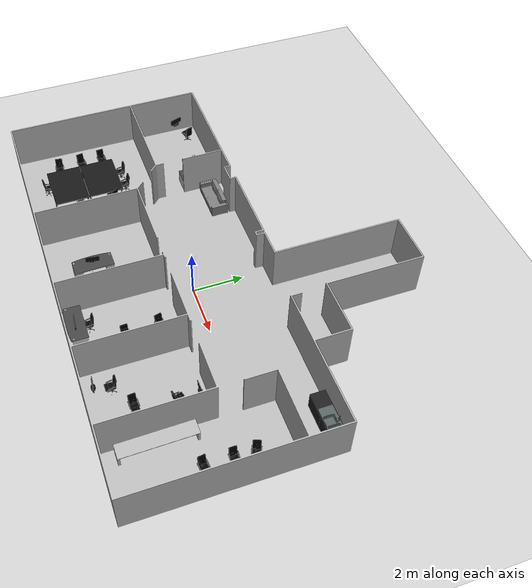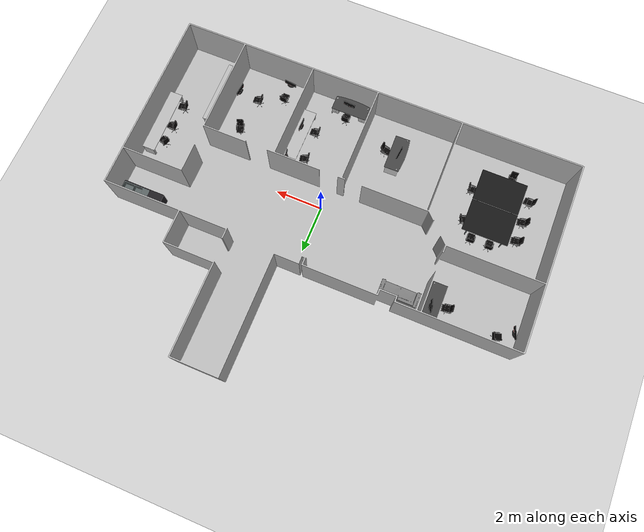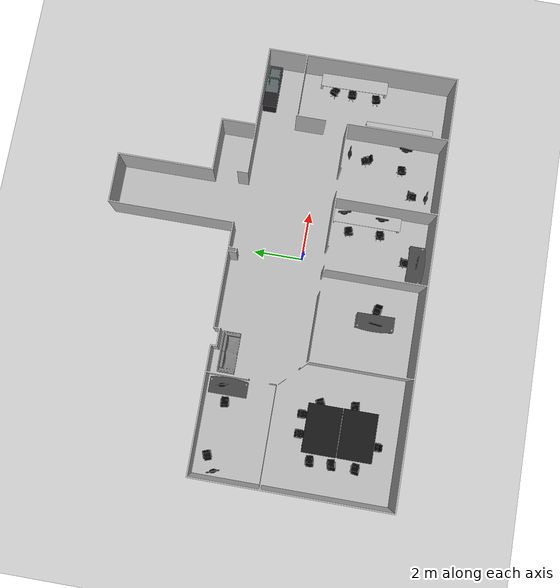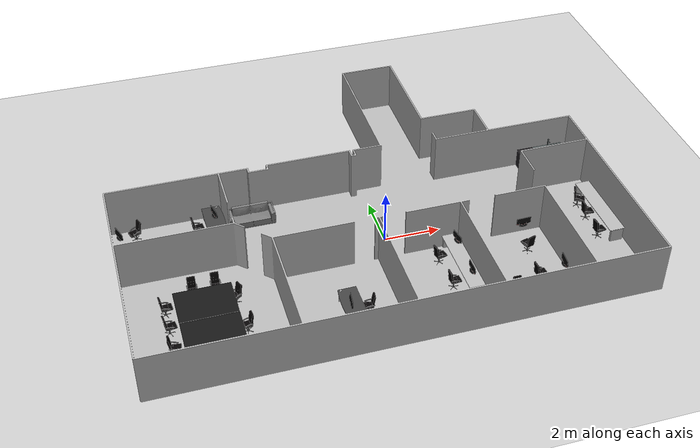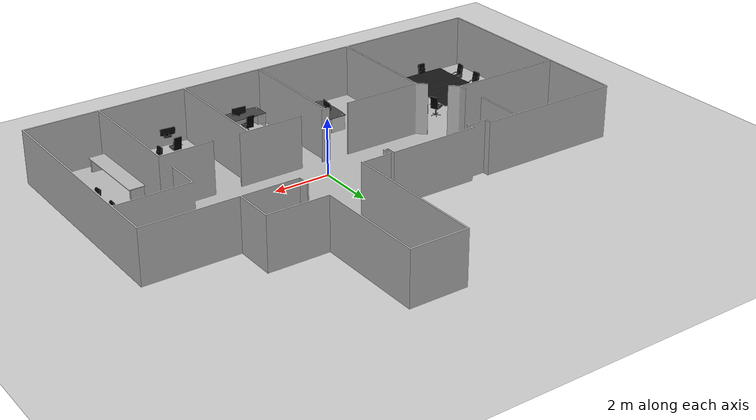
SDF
<sdf version="1.4">
 <world name="default">
  <light name="sun" type="directional">
   <pose>0 0 10 0 -0 0</pose>
   <diffuse>0.8 0.8 0.8 1</diffuse>
   <specular>0.2 0.2 0.2 1</specular>
   <attenuation>
    <range>1000</range>
    <constant>0.9</constant>
    <linear>0.01</linear>
    <quadratic>0.001</quadratic>
   </attenuation>
   <direction>-0.5 0.1 -0.9</direction>
  </light>
  <model name="ground_plane">
   <static>1</static>
   <link name="link">
    <collision name="collision">
     <geometry><plane><normal>0 0 1</normal><size>100 100</size></plane></geometry>
     <surface><friction><ode><mu>100</mu><mu2>50</mu2></ode></friction></surface>
    </collision>
    <visual name="visual">
     <cast_shadows>0</cast_shadows>
     <geometry><plane><normal>0 0 1</normal><size>100 100</size></plane></geometry>
     <material>
      <script><uri>file://media/materials/scripts/gazebo.material</uri><name>Gazebo/Grey</name></script>
     </material>
    </visual>
    <velocity_decay><linear>0</linear><angular>0</angular></velocity_decay>
   </link>
  </model>
  <physics type="ode">
   <max_step_size>0.001</max_step_size>
   <real_time_factor>1</real_time_factor>
   <real_time_update_rate>1000</real_time_update_rate>
   <gravity>0 0 -9.8</gravity>
  </physics>
  <scene><ambient>0.4 0.4 0.4 1</ambient><background>0.7 0.7 0.7 1</background><shadows>1</shadows></scene>
  <spherical_coordinates>
   <surface_model>EARTH_WGS84</surface_model>
   <latitude_deg>0</latitude_deg>
   <longitude_deg>0</longitude_deg>
   <elevation>0</elevation>
   <heading_deg>0</heading_deg>
  </spherical_coordinates>
  <model name="cogni_office">
   <static>1</static>
   <pose>-1.0274 -0.806615 0.001 0 -0 0</pose>
   <link name="walls">
    <collision name="collision">
     <geometry><mesh><uri>model://cogni_office/meshes/cogni_office_collision.dae</uri></mesh></geometry>
     <surface><friction><ode><mu>0.99</mu><mu2>0.99</mu2></ode></friction></surface>
     <max_contacts>100</max_contacts>
    </collision>
    <visual name="visual">
     <geometry><mesh><uri>model://cogni_office/meshes/cogni_office_visual.dae</uri></mesh></geometry>
    </visual>
    <velocity_decay><linear>0</linear><angular>0</angular></velocity_decay>
   </link>
  </model>
  <model name="desk_2">
   <static>1</static>
   <link name="link">
    <collision name="collision">
     <geometry><mesh><uri>model://desk_2/desk_2_collision.dae</uri><scale>0.7 0.7 0.7</scale></mesh></geometry>
    </collision>
    <visual name="visual">
     <geometry><mesh><uri>model://desk_2/desk_2_visual.dae</uri><scale>0.7 0.7 0.7</scale></mesh></geometry>
    </visual>
    <velocity_decay><linear>0</linear><angular>0</angular></velocity_decay>
   </link>
   <pose>-5.65405 2.06496 -0.202199 0 -0 1.57362</pose>
  </model>
  <model name="computer_screen_0">
   <static>1</static>
   <link name="link">
    <collision name="collision">
     <geometry>
      <mesh><uri>model://computer_screen/computer_screen_collision.dae</uri><scale>0.08 0.08 0.08</scale></mesh>
     </geometry>
    </collision>
    <visual name="visual">
     <geometry>
      <mesh><uri>model://computer_screen/computer_screen_visual.dae</uri><scale>0.08 0.08 0.08</scale></mesh>
     </geometry>
    </visual>
    <velocity_decay><linear>0</linear><angular>0</angular></velocity_decay>
   </link>
   <pose>-5.62659 2.3205 0.559113 0 0 -1.34404</pose>
  </model>
  <model name="office_chair_1">
   <static>1</static>
   <link name="link">
    <collision name="collision">
     <geometry>
      <mesh><uri>model://office_chair/office_chair_collision.dae</uri><scale>0.2 0.2 0.2</scale></mesh>
     </geometry>
    </collision>
    <visual name="visual">
     <geometry>
      <mesh><uri>model://office_chair/office_chair_visual.dae</uri><scale>0.2 0.2 0.2</scale></mesh>
     </geometry>
    </visual>
    <velocity_decay><linear>0</linear><angular>0</angular></velocity_decay>
   </link>
   <pose>-6.30461 2.10315 0.024369 0 -0 1.68847</pose>
  </model>
  <model name="office_chair">
   <static>1</static>
   <link name="link">
    <collision name="collision">
     <geometry>
      <mesh><uri>model://office_chair/office_chair_collision.dae</uri><scale>0.2 0.2 0.2</scale></mesh>
     </geometry>
    </collision>
    <visual name="visual">
     <geometry>
      <mesh><uri>model://office_chair/office_chair_visual.dae</uri><scale>0.2 0.2 0.2</scale></mesh>
     </geometry>
    </visual>
    <velocity_decay><linear>0</linear><angular>0</angular></velocity_decay>
   </link>
   <pose>-8.41161 2.43587 0.034199 0 0 -1.21819</pose>
  </model>
  <model name="computer_screen">
   <static>1</static>
   <link name="link">
    <collision name="collision">
     <geometry>
      <mesh><uri>model://computer_screen/computer_screen_collision.dae</uri><scale>0.08 0.08 0.08</scale></mesh>
     </geometry>
    </collision>
    <visual name="visual">
     <geometry>
      <mesh><uri>model://computer_screen/computer_screen_visual.dae</uri><scale>0.08 0.08 0.08</scale></mesh>
     </geometry>
    </visual>
    <velocity_decay><linear>0</linear><angular>0</angular></velocity_decay>
   </link>
   <pose>-8.99992 2.0827 0.524019 0 -0 1.92983</pose>
  </model>
  <model name="office_chair_0">
   <static>1</static>
   <link name="link">
    <collision name="collision">
     <geometry>
      <mesh><uri>model://office_chair/office_chair_collision.dae</uri><scale>0.2 0.2 0.2</scale></mesh>
     </geometry>
    </collision>
    <visual name="visual">
     <geometry>
      <mesh><uri>model://office_chair/office_chair_visual.dae</uri><scale>0.2 0.2 0.2</scale></mesh>
     </geometry>
    </visual>
    <velocity_decay><linear>0</linear><angular>0</angular></velocity_decay>
   </link>
   <pose>4.56945 -2 0.033331 0 0 -2.8624</pose>
  </model>
  <model name="computer_screen_1">
   <static>1</static>
   <link name="link">
    <collision name="collision">
     <geometry>
      <mesh><uri>model://computer_screen/computer_screen_collision.dae</uri><scale>0.08 0.08 0.08</scale></mesh>
     </geometry>
    </collision>
    <visual name="visual">
     <geometry>
      <mesh><uri>model://computer_screen/computer_screen_visual.dae</uri><scale>0.08 0.08 0.08</scale></mesh>
     </geometry>
    </visual>
    <velocity_decay><linear>0</linear><angular>0</angular></velocity_decay>
   </link>
   <pose>4.6857 -1.22759 0.555562 0 -0 0.027883</pose>
  </model>
  <model name="office_chair_2">
   <static>1</static>
   <link name="link">
    <collision name="collision">
     <geometry>
      <mesh><uri>model://office_chair/office_chair_collision.dae</uri><scale>0.2 0.2 0.2</scale></mesh>
     </geometry>
    </collision>
    <visual name="visual">
     <geometry>
      <mesh><uri>model://office_chair/office_chair_visual.dae</uri><scale>0.2 0.2 0.2</scale></mesh>
     </geometry>
    </visual>
    <velocity_decay><linear>0</linear><angular>0</angular></velocity_decay>
   </link>
   <pose>4.34577 -3.47874 0.056732 0 -0 1.65272</pose>
  </model>
  <model name="computer_screen_2">
   <static>1</static>
   <link name="link">
    <collision name="collision">
     <geometry>
      <mesh><uri>model://computer_screen/computer_screen_collision.dae</uri><scale>0.08 0.08 0.08</scale></mesh>
     </geometry>
    </collision>
    <visual name="visual">
     <geometry>
      <mesh><uri>model://computer_screen/computer_screen_visual.dae</uri><scale>0.08 0.08 0.08</scale></mesh>
     </geometry>
    </visual>
    <velocity_decay><linear>0</linear><angular>0</angular></velocity_decay>
   </link>
   <pose>5.21575 -3.49715 0.553768 0 -0 -1.66565</pose>
  </model>
  <model name="office_chair_3">
   <static>1</static>
   <link name="link">
    <collision name="collision">
     <geometry>
      <mesh><uri>model://office_chair/office_chair_collision.dae</uri><scale>0.2 0.2 0.2</scale></mesh>
     </geometry>
    </collision>
    <visual name="visual">
     <geometry>
      <mesh><uri>model://office_chair/office_chair_visual.dae</uri><scale>0.2 0.2 0.2</scale></mesh>
     </geometry>
    </visual>
    <velocity_decay><linear>0</linear><angular>0</angular></velocity_decay>
   </link>
   <pose>3.35166 -4.00352 0.033761 0 -0 0</pose>
  </model>
  <model name="computer_screen_3">
   <static>1</static>
   <link name="link">
    <collision name="collision">
     <geometry>
      <mesh><uri>model://computer_screen/computer_screen_collision.dae</uri><scale>0.08 0.08 0.08</scale></mesh>
     </geometry>
    </collision>
    <visual name="visual">
     <geometry>
      <mesh><uri>model://computer_screen/computer_screen_visual.dae</uri><scale>0.08 0.08 0.08</scale></mesh>
     </geometry>
    </visual>
    <velocity_decay><linear>0</linear><angular>0</angular></velocity_decay>
   </link>
   <pose>3.31711 -4.61895 0.513757 0 -0 3.04095</pose>
  </model>
  <model name="desk_2_0">
   <static>1</static>
   <link name="link">
    <collision name="collision">
     <geometry><mesh><uri>model://desk_2/desk_2_collision.dae</uri><scale>0.7 0.7 0.7</scale></mesh></geometry>
    </collision>
    <visual name="visual">
     <geometry><mesh><uri>model://desk_2/desk_2_visual.dae</uri><scale>0.7 0.7 0.7</scale></mesh></geometry>
    </visual>
    <velocity_decay><linear>0</linear><angular>0</angular></velocity_decay>
   </link>
   <pose>-2.15964 -3.33626 -0.200727 0 0 -1.55313</pose>
  </model>
  <model name="office_chair_4">
   <static>1</static>
   <link name="link">
    <collision name="collision">
     <geometry>
      <mesh><uri>model://office_chair/office_chair_collision.dae</uri><scale>0.2 0.2 0.2</scale></mesh>
     </geometry>
    </collision>
    <visual name="visual">
     <geometry>
      <mesh><uri>model://office_chair/office_chair_visual.dae</uri><scale>0.2 0.2 0.2</scale></mesh>
     </geometry>
    </visual>
    <velocity_decay><linear>0</linear><angular>0</angular></velocity_decay>
   </link>
   <pose>-1.59329 -3.35756 0.057731 0 0 -1.72175</pose>
  </model>
  <model name="computer_screen_4">
   <static>1</static>
   <link name="link">
    <collision name="collision">
     <geometry>
      <mesh><uri>model://computer_screen/computer_screen_collision.dae</uri><scale>0.08 0.08 0.08</scale></mesh>
     </geometry>
    </collision>
    <visual name="visual">
     <geometry>
      <mesh><uri>model://computer_screen/computer_screen_visual.dae</uri><scale>0.08 0.08 0.08</scale></mesh>
     </geometry>
    </visual>
    <velocity_decay><linear>0</linear><angular>0</angular></velocity_decay>
   </link>
   <pose>-2.203 -3.33274 0.530741 0 -0 1.45455</pose>
  </model>
  <model name="desk_3">
   <static>1</static>
   <link name="link">
    <collision name="collision">
     <geometry><mesh><uri>model://desk_3/desk_3_collision.dae</uri><scale>3.5 0.7 0.7</scale></mesh></geometry>
    </collision>
    <visual name="visual">
     <geometry><mesh><uri>model://desk_3/desk_3_visual.dae</uri><scale>3.5 0.7 0.7</scale></mesh></geometry>
    </visual>
    <velocity_decay><linear>0</linear><angular>0</angular></velocity_decay>
   </link>
   <pose>2.0224 -2.37129 0.055035 0 -0 1.57104</pose>
  </model>
  <model name="office_chair_5">
   <static>1</static>
   <link name="link">
    <collision name="collision">
     <geometry>
      <mesh><uri>model://office_chair/office_chair_collision.dae</uri><scale>0.2 0.2 0.2</scale></mesh>
     </geometry>
    </collision>
    <visual name="visual">
     <geometry>
      <mesh><uri>model://office_chair/office_chair_visual.dae</uri><scale>0.2 0.2 0.2</scale></mesh>
     </geometry>
    </visual>
    <velocity_decay><linear>0</linear><angular>0</angular></velocity_decay>
   </link>
   <pose>1.40849 -1.69667 0.04272 0 -0 1.77075</pose>
  </model>
  <model name="office_chair_6">
   <static>1</static>
   <link name="link">
    <collision name="collision">
     <geometry>
      <mesh><uri>model://office_chair/office_chair_collision.dae</uri><scale>0.2 0.2 0.2</scale></mesh>
     </geometry>
    </collision>
    <visual name="visual">
     <geometry>
      <mesh><uri>model://office_chair/office_chair_visual.dae</uri><scale>0.2 0.2 0.2</scale></mesh>
     </geometry>
    </visual>
    <velocity_decay><linear>0</linear><angular>0</angular></velocity_decay>
   </link>
   <pose>1.45636 -3 0.035229 0 -0 1.63936</pose>
  </model>
  <model name="computer_screen_5">
   <static>1</static>
   <link name="link">
    <collision name="collision">
     <geometry>
      <mesh><uri>model://computer_screen/computer_screen_collision.dae</uri><scale>0.08 0.08 0.08</scale></mesh>
     </geometry>
    </collision>
    <visual name="visual">
     <geometry>
      <mesh><uri>model://computer_screen/computer_screen_visual.dae</uri><scale>0.08 0.08 0.08</scale></mesh>
     </geometry>
    </visual>
    <velocity_decay><linear>0</linear><angular>0</angular></velocity_decay>
   </link>
   <pose>2.16351 -1.39078 0.572164 0 -0 -1.39322</pose>
  </model>
  <model name="computer_screen_6">
   <static>1</static>
   <link name="link">
    <collision name="collision">
     <geometry>
      <mesh><uri>model://computer_screen/computer_screen_collision.dae</uri><scale>0.08 0.08 0.08</scale></mesh>
     </geometry>
    </collision>
    <visual name="visual">
     <geometry>
      <mesh><uri>model://computer_screen/computer_screen_visual.dae</uri><scale>0.08 0.08 0.08</scale></mesh>
     </geometry>
    </visual>
    <velocity_decay><linear>0</linear><angular>0</angular></velocity_decay>
   </link>
   <pose>2.10985 -2.9553 0.562419 0 -0 -1.57192</pose>
  </model>
  <model name="desk_3_0">
   <static>1</static>
   <link name="link">
    <collision name="collision">
     <geometry><mesh><uri>model://desk_3/desk_3_collision.dae</uri><scale>3.5 0.7 0.7</scale></mesh></geometry>
    </collision>
    <visual name="visual">
     <geometry><mesh><uri>model://desk_3/desk_3_visual.dae</uri><scale>3.5 0.7 0.7</scale></mesh></geometry>
    </visual>
    <velocity_decay><linear>0</linear><angular>0</angular></velocity_decay>
   </link>
   <pose>7.75671 -0.965759 0.034902 0 -0 1.58216</pose>
  </model>
  <model name="office_chair_7">
   <static>1</static>
   <link name="link">
    <collision name="collision">
     <geometry>
      <mesh><uri>model://office_chair/office_chair_collision.dae</uri><scale>0.2 0.2 0.2</scale></mesh>
     </geometry>
    </collision>
    <visual name="visual">
     <geometry>
      <mesh><uri>model://office_chair/office_chair_visual.dae</uri><scale>0.2 0.2 0.2</scale></mesh>
     </geometry>
    </visual>
    <velocity_decay><linear>0</linear><angular>0</angular></velocity_decay>
   </link>
   <pose>7.25034 -1.96771 0.034441 0 -0 1.69909</pose>
  </model>
  <model name="office_chair_8">
   <static>1</static>
   <link name="link">
    <collision name="collision">
     <geometry>
      <mesh><uri>model://office_chair/office_chair_collision.dae</uri><scale>0.2 0.2 0.2</scale></mesh>
     </geometry>
    </collision>
    <visual name="visual">
     <geometry>
      <mesh><uri>model://office_chair/office_chair_visual.dae</uri><scale>0.2 0.2 0.2</scale></mesh>
     </geometry>
    </visual>
    <velocity_decay><linear>0</linear><angular>0</angular></velocity_decay>
   </link>
   <pose>7.2806 -0.937831 0.039693 0.013291 -0.013986 1.55985</pose>
  </model>
  <model name="office_chair_9">
   <static>1</static>
   <link name="link">
    <collision name="collision">
     <geometry>
      <mesh><uri>model://office_chair/office_chair_collision.dae</uri><scale>0.2 0.2 0.2</scale></mesh>
     </geometry>
    </collision>
    <visual name="visual">
     <geometry>
      <mesh><uri>model://office_chair/office_chair_visual.dae</uri><scale>0.2 0.2 0.2</scale></mesh>
     </geometry>
    </visual>
    <velocity_decay><linear>0</linear><angular>0</angular></velocity_decay>
   </link>
   <pose>7.30823 -0.186049 0.034349 0 -0 1.17026</pose>
  </model>
  <model name="desk_3_1">
   <static>1</static>
   <link name="link">
    <collision name="collision">
     <geometry><mesh><uri>model://desk_3/desk_3_collision.dae</uri><scale>3.5 0.7 0.7</scale></mesh></geometry>
    </collision>
    <visual name="visual">
     <geometry><mesh><uri>model://desk_3/desk_3_visual.dae</uri><scale>3.5 0.7 0.7</scale></mesh></geometry>
    </visual>
    <velocity_decay><linear>0</linear><angular>0</angular></velocity_decay>
   </link>
   <pose>5.94044 -3.11583 0.085183 -0 -0 -1.56089</pose>
  </model>
  <model name="big_table">
   <static>1</static>
   <link name="link">
    <collision name="collision">
     <geometry>
      <mesh><uri>model://big_table/big_table_collision.dae</uri><scale>0.7 0.7 0.7</scale></mesh>
     </geometry>
    </collision>
    <visual name="visual">
     <geometry><mesh><uri>model://big_table/big_table_visual.dae</uri><scale>0.7 0.7 0.7</scale></mesh></geometry>
    </visual>
    <velocity_decay><linear>0</linear><angular>0</angular></velocity_decay>
   </link>
   <pose>-6.71294 -1.9098 0.02957 0 -0 0</pose>
  </model>
  <model name="big_table_0">
   <static>1</static>
   <link name="link">
    <collision name="collision">
     <geometry>
      <mesh><uri>model://big_table/big_table_collision.dae</uri><scale>0.7 0.7 0.7</scale></mesh>
     </geometry>
    </collision>
    <visual name="visual">
     <geometry><mesh><uri>model://big_table/big_table_visual.dae</uri><scale>0.7 0.7 0.7</scale></mesh></geometry>
    </visual>
    <velocity_decay><linear>0</linear><angular>0</angular></velocity_decay>
   </link>
   <pose>-6.70831 -3.33571 0.023926 0 -0 0</pose>
  </model>
  <model name="office_chair_10">
   <static>1</static>
   <link name="link">
    <collision name="collision">
     <geometry>
      <mesh><uri>model://office_chair/office_chair_collision.dae</uri><scale>0.2 0.2 0.2</scale></mesh>
     </geometry>
    </collision>
    <visual name="visual">
     <geometry>
      <mesh><uri>model://office_chair/office_chair_visual.dae</uri><scale>0.2 0.2 0.2</scale></mesh>
     </geometry>
    </visual>
    <velocity_decay><linear>0</linear><angular>0</angular></velocity_decay>
   </link>
   <pose>-6.21645 -1 0.032877 0 -0 0</pose>
  </model>
  <model name="office_chair_11">
   <static>1</static>
   <link name="link">
    <collision name="collision">
     <geometry>
      <mesh><uri>model://office_chair/office_chair_collision.dae</uri><scale>0.2 0.2 0.2</scale></mesh>
     </geometry>
    </collision>
    <visual name="visual">
     <geometry>
      <mesh><uri>model://office_chair/office_chair_visual.dae</uri><scale>0.2 0.2 0.2</scale></mesh>
     </geometry>
    </visual>
    <velocity_decay><linear>0</linear><angular>0</angular></velocity_decay>
   </link>
   <pose>-7 -1 0.029562 0 -0 0</pose>
  </model>
  <model name="office_chair_12">
   <static>1</static>
   <link name="link">
    <collision name="collision">
     <geometry>
      <mesh><uri>model://office_chair/office_chair_collision.dae</uri><scale>0.2 0.2 0.2</scale></mesh>
     </geometry>
    </collision>
    <visual name="visual">
     <geometry>
      <mesh><uri>model://office_chair/office_chair_visual.dae</uri><scale>0.2 0.2 0.2</scale></mesh>
     </geometry>
    </visual>
    <velocity_decay><linear>0</linear><angular>0</angular></velocity_decay>
   </link>
   <pose>-8 -1.59907 0.037854 0 -0 1.65249</pose>
  </model>
  <model name="office_chair_13">
   <static>1</static>
   <link name="link">
    <collision name="collision">
     <geometry>
      <mesh><uri>model://office_chair/office_chair_collision.dae</uri><scale>0.2 0.2 0.2</scale></mesh>
     </geometry>
    </collision>
    <visual name="visual">
     <geometry>
      <mesh><uri>model://office_chair/office_chair_visual.dae</uri><scale>0.2 0.2 0.2</scale></mesh>
     </geometry>
    </visual>
    <velocity_decay><linear>0</linear><angular>0</angular></velocity_decay>
   </link>
   <pose>-8 -2.46934 0.033271 0 -0 1.70571</pose>
  </model>
  <model name="office_chair_14">
   <static>1</static>
   <link name="link">
    <collision name="collision">
     <geometry>
      <mesh><uri>model://office_chair/office_chair_collision.dae</uri><scale>0.2 0.2 0.2</scale></mesh>
     </geometry>
    </collision>
    <visual name="visual">
     <geometry>
      <mesh><uri>model://office_chair/office_chair_visual.dae</uri><scale>0.2 0.2 0.2</scale></mesh>
     </geometry>
    </visual>
    <velocity_decay><linear>0</linear><angular>0</angular></velocity_decay>
   </link>
   <pose>-8 -3.42163 0.029116 0 -0 1.44132</pose>
  </model>
  <model name="office_chair_15">
   <static>1</static>
   <link name="link">
    <collision name="collision">
     <geometry>
      <mesh><uri>model://office_chair/office_chair_collision.dae</uri><scale>0.2 0.2 0.2</scale></mesh>
     </geometry>
    </collision>
    <visual name="visual">
     <geometry>
      <mesh><uri>model://office_chair/office_chair_visual.dae</uri><scale>0.2 0.2 0.2</scale></mesh>
     </geometry>
    </visual>
    <velocity_decay><linear>0</linear><angular>0</angular></velocity_decay>
   </link>
   <pose>-7.00356 -4.13668 0.02811 0 0 -3.12942</pose>
  </model>
  <model name="office_chair_16">
   <static>1</static>
   <link name="link">
    <collision name="collision">
     <geometry>
      <mesh><uri>model://office_chair/office_chair_collision.dae</uri><scale>0.2 0.2 0.2</scale></mesh>
     </geometry>
    </collision>
    <visual name="visual">
     <geometry>
      <mesh><uri>model://office_chair/office_chair_visual.dae</uri><scale>0.2 0.2 0.2</scale></mesh>
     </geometry>
    </visual>
    <velocity_decay><linear>0</linear><angular>0</angular></velocity_decay>
   </link>
   <pose>-5.67126 -1.66394 0.036852 0 0 -1.14558</pose>
  </model>
  <model name="office_chair_17">
   <static>1</static>
   <link name="link">
    <collision name="collision">
     <geometry>
      <mesh><uri>model://office_chair/office_chair_collision.dae</uri><scale>0.2 0.2 0.2</scale></mesh>
     </geometry>
    </collision>
    <visual name="visual">
     <geometry>
      <mesh><uri>model://office_chair/office_chair_visual.dae</uri><scale>0.2 0.2 0.2</scale></mesh>
     </geometry>
    </visual>
    <velocity_decay><linear>0</linear><angular>0</angular></velocity_decay>
   </link>
   <pose>-5.56974 -3.06358 0.033931 0 0 -1.45967</pose>
  </model>
  <model name="kitchen">
   <static>1</static>
   <link name="link">
    <collision name="collision">
     <geometry>
      <mesh><uri>model://kitchen/kitchen_collision.dae</uri><scale>0.25 0.25 0.25</scale></mesh>
     </geometry>
    </collision>
    <visual name="visual">
     <geometry><mesh><uri>model://kitchen/kitchen_visual.dae</uri><scale>0.25 0.25 0.25</scale></mesh></geometry>
    </visual>
    <velocity_decay><linear>0</linear><angular>0</angular></velocity_decay>
   </link>
   <pose>7 2.41818 0 0 -0 0</pose>
  </model>
  <model name="divan">
   <static>1</static>
   <link name="link">
    <collision name="collision">
     <geometry><mesh><uri>model://divan/divan_collision.dae</uri><scale>0.2 0.2 0.2</scale></mesh></geometry>
    </collision>
    <visual name="visual">
     <geometry><mesh><uri>model://divan/divan_visual.dae</uri><scale>0.2 0.2 0.2</scale></mesh></geometry>
    </visual>
    <velocity_decay><linear>0</linear><angular>0</angular></velocity_decay>
   </link>
   <pose>-4.31003 2.29301 0 0 -0 0</pose>
  </model>
  <model name="desk_2_1">
   <static>1</static>
   <link name="link">
    <collision name="collision">
     <geometry><mesh><uri>model://desk_2/desk_2_collision.dae</uri><scale>0.7 0.7 0.7</scale></mesh></geometry>
    </collision>
    <visual name="visual">
     <geometry><mesh><uri>model://desk_2/desk_2_visual.dae</uri><scale>0.7 0.7 0.7</scale></mesh></geometry>
    </visual>
    <velocity_decay><linear>0</linear><angular>0</angular></velocity_decay>
   </link>
   <pose>0.47058 -4.6204 -0.196089 0 -0 0</pose>
  </model>
  <model name="computer_screen_7">
   <static>1</static>
   <link name="link">
    <collision name="collision">
     <geometry>
      <mesh><uri>model://computer_screen/computer_screen_collision.dae</uri><scale>0.08 0.08 0.08</scale></mesh>
     </geometry>
    </collision>
    <visual name="visual">
     <geometry>
      <mesh><uri>model://computer_screen/computer_screen_visual.dae</uri><scale>0.08 0.08 0.08</scale></mesh>
     </geometry>
    </visual>
    <velocity_decay><linear>0</linear><angular>0</angular></velocity_decay>
   </link>
   <pose>0.571369 -4.62833 0.553757 0 -0 3.06516</pose>
  </model>
  <model name="office_chair_18">
   <static>1</static>
   <link name="link">
    <collision name="collision">
     <geometry>
      <mesh><uri>model://office_chair/office_chair_collision.dae</uri><scale>0.2 0.2 0.2</scale></mesh>
     </geometry>
    </collision>
    <visual name="visual">
     <geometry>
      <mesh><uri>model://office_chair/office_chair_visual.dae</uri><scale>0.2 0.2 0.2</scale></mesh>
     </geometry>
    </visual>
    <velocity_decay><linear>0</linear><angular>0</angular></velocity_decay>
   </link>
   <pose>0.513994 -4.11892 0.034056 0 -0 0</pose>
  </model>
 </world>
</sdf>
